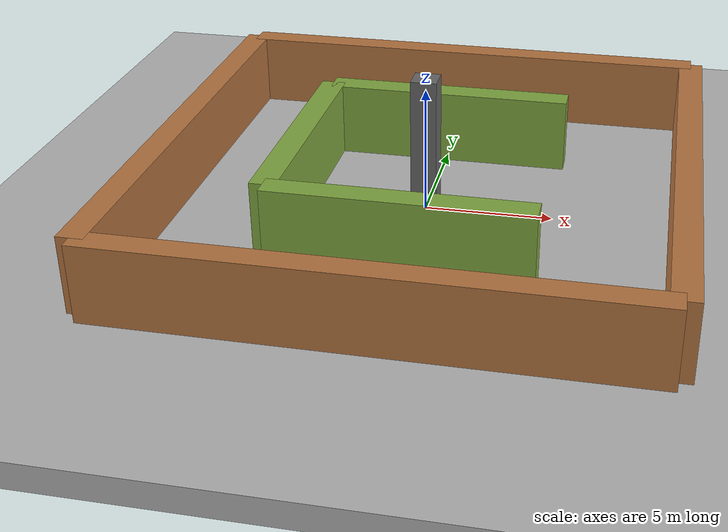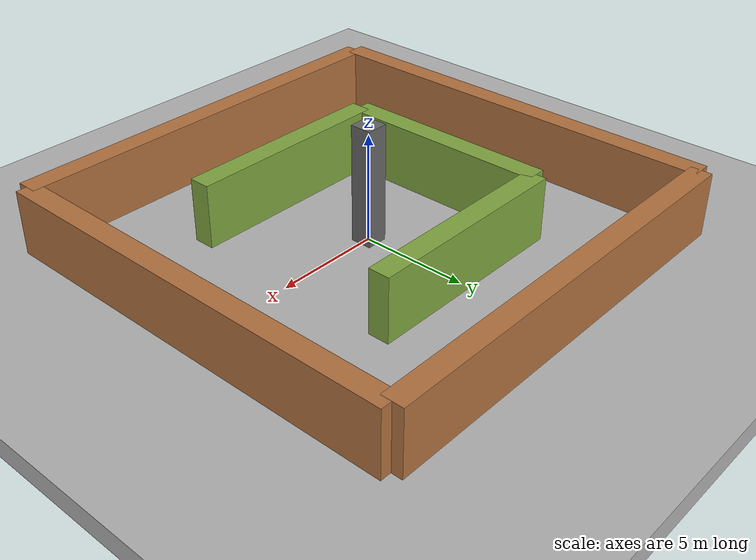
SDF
<?xml version="1.0" ?>
<sdf version="1.9">
  <world name='double_square_gap'>
    <physics name='1ms' type='ignored'>
      <max_step_size>0.001</max_step_size>
      <real_time_factor>1</real_time_factor>
    </physics>

    <plugin filename="gz-sim-physics-system" name="gz::sim::systems::Physics"/>
    <plugin filename="gz-sim-user-commands-system" name="gz::sim::systems::UserCommands"/>
    <plugin filename="gz-sim-scene-broadcaster-system" name="gz::sim::systems::SceneBroadcaster"/>
    <plugin filename="gz-sim-sensors-system" name="gz::sim::systems::Sensors">
      <render_engine>ogre2</render_engine>
    </plugin>
    <plugin filename="gz-sim-imu-system" name="gz::sim::systems::Imu"/>

    <light name='sun' type='directional'>
      <pose>0 0 10 0 -0 0</pose>
      <cast_shadows>true</cast_shadows>
      <intensity>1</intensity>
      <direction>-0.5 0.1 -0.9</direction>
      <diffuse>0.8 0.8 0.8 1</diffuse>
      <specular>0.2 0.2 0.2 1</specular>
      <attenuation>
        <range>1000</range>
        <linear>0.01</linear>
        <constant>0.90000000000000002</constant>
        <quadratic>0.001</quadratic>
      </attenuation>
      <spot>
        <inner_angle>0</inner_angle>
        <outer_angle>0</outer_angle>
        <falloff>0</falloff>
      </spot>
    </light>

    <gui fullscreen='0'>
      <camera name='user_camera'>
        <pose>15 -15 25 0 0.5 2.8</pose>
        <view_controller>orbit</view_controller>
      </camera>
    </gui>

    <scene>
      <ambient>0.4 0.4 0.4 1</ambient>
      <background>0.7 0.7 0.7 1</background>
      <shadows>true</shadows>
    </scene>

    <gravity>0 0 -9.8</gravity>
    <magnetic_field>6e-6 2.3e-5 -4.2e-5</magnetic_field>
    <atmosphere type='adiabatic'/>

    <model name='floor'>
      <static>true</static>
      <pose>0 0 -0.5 0 -0 0</pose>
      <link name='link'>
        <visual name='visual'>
          <geometry>
            <box>
              <size>80 80 1</size>
            </box>
          </geometry>
          <material>
            <ambient>0.5 0.5 0.5 1</ambient>
            <diffuse>0.7 0.7 0.7 1</diffuse>
          </material>
        </visual>
        <collision name='collision'>
          <geometry>
            <box>
              <size>80 80 1</size>
            </box>
          </geometry>
        </collision>
      </link>
    </model>

    <!-- Outer square: centered at origin, side = 20m (walls from -10 to +10) -->
    <!-- Top wall -->
    <model name='outer_top'>
      <static>true</static>
      <pose>0 10 0.5 0 0 0</pose>
      <link name='link'>
        <visual name='visual'>
          <geometry><box><size>20 1 5</size></box></geometry>
          <material><ambient>0.6 0.35 0.2 1</ambient><diffuse>0.7 0.45 0.25 1</diffuse></material>
        </visual>
        <collision name='collision'>
          <geometry><box><size>20 1 5</size></box></geometry>
        </collision>
      </link>
    </model>
    <!-- Bottom wall -->
    <model name='outer_bottom'>
      <static>true</static>
      <pose>0 -10 0.5 0 0 0</pose>
      <link name='link'>
        <visual name='visual'>
          <geometry><box><size>20 1 5</size></box></geometry>
          <material><ambient>0.6 0.35 0.2 1</ambient><diffuse>0.7 0.45 0.25 1</diffuse></material>
        </visual>
        <collision name='collision'>
          <geometry><box><size>20 1 5</size></box></geometry>
        </collision>
      </link>
    </model>
    <!-- Left wall -->
    <model name='outer_left'>
      <static>true</static>
      <pose>-10 0 0.5 0 0 0</pose>
      <link name='link'>
        <visual name='visual'>
          <geometry><box><size>1 20 5</size></box></geometry>
          <material><ambient>0.6 0.35 0.2 1</ambient><diffuse>0.7 0.45 0.25 1</diffuse></material>
        </visual>
        <collision name='collision'>
          <geometry><box><size>1 20 5</size></box></geometry>
        </collision>
      </link>
    </model>
    <!-- Right wall -->
    <model name='outer_right'>
      <static>true</static>
      <pose>10 0 0.5 0 0 0</pose>
      <link name='link'>
        <visual name='visual'>
          <geometry><box><size>1 20 5</size></box></geometry>
          <material><ambient>0.6 0.35 0.2 1</ambient><diffuse>0.7 0.45 0.25 1</diffuse></material>
        </visual>
        <collision name='collision'>
          <geometry><box><size>1 20 5</size></box></geometry>
        </collision>
      </link>
    </model>

    <!-- Inner square: centered at origin, side = 10m (walls from -5 to +5), missing right wall -->
    <!-- Top wall -->
    <model name='inner_top'>
      <static>true</static>
      <pose>0 5 0.5 0 0 0</pose>
      <link name='link'>
        <visual name='visual'>
          <geometry><box><size>10 1 5</size></box></geometry>
          <material><ambient>0.4 0.55 0.2 1</ambient><diffuse>0.5 0.65 0.25 1</diffuse></material>
        </visual>
        <collision name='collision'>
          <geometry><box><size>10 1 5</size></box></geometry>
        </collision>
      </link>
    </model>
    <!-- Bottom wall -->
    <model name='inner_bottom'>
      <static>true</static>
      <pose>0 -5 0.5 0 0 0</pose>
      <link name='link'>
        <visual name='visual'>
          <geometry><box><size>10 1 5</size></box></geometry>
          <material><ambient>0.4 0.55 0.2 1</ambient><diffuse>0.5 0.65 0.25 1</diffuse></material>
        </visual>
        <collision name='collision'>
          <geometry><box><size>10 1 5</size></box></geometry>
        </collision>
      </link>
    </model>
    <!-- Left wall -->
    <model name='inner_left'>
      <static>true</static>
      <pose>-5 0 0.5 0 0 0</pose>
      <link name='link'>
        <visual name='visual'>
          <geometry><box><size>1 10 5</size></box></geometry>
          <material><ambient>0.4 0.55 0.2 1</ambient><diffuse>0.5 0.65 0.25 1</diffuse></material>
        </visual>
        <collision name='collision'>
          <geometry><box><size>1 10 5</size></box></geometry>
        </collision>
      </link>
    </model>
    <!-- Right wall: MISSING (opening between inner and outer) -->

    <!-- Central pillar in the inner square -->
    <model name='center_pillar'>
      <static>true</static>
      <pose>0 0 0.5 0 0 0</pose>
      <link name='link'>
        <visual name='visual'>
          <geometry><box><size>1 1 10</size></box></geometry>
          <material><ambient>0.3 0.3 0.3 1</ambient><diffuse>0.4 0.4 0.4 1</diffuse></material>
        </visual>
        <collision name='collision'>
          <geometry><box><size>1 1 10</size></box></geometry>
        </collision>
      </link>
    </model>

  </world>
</sdf>
